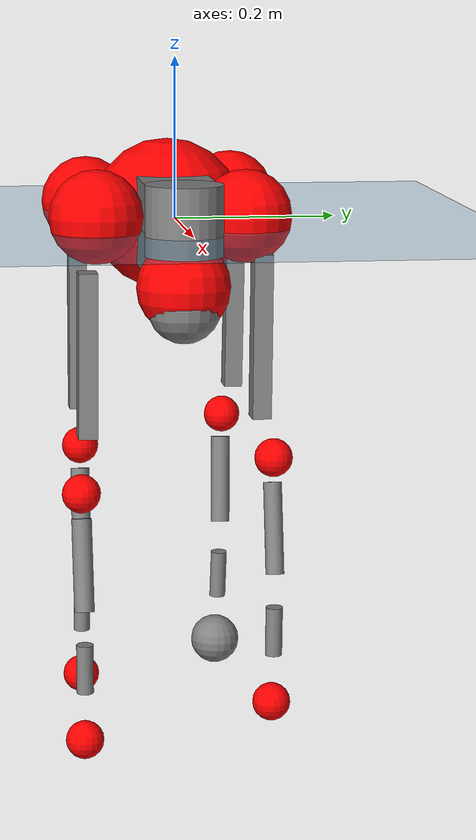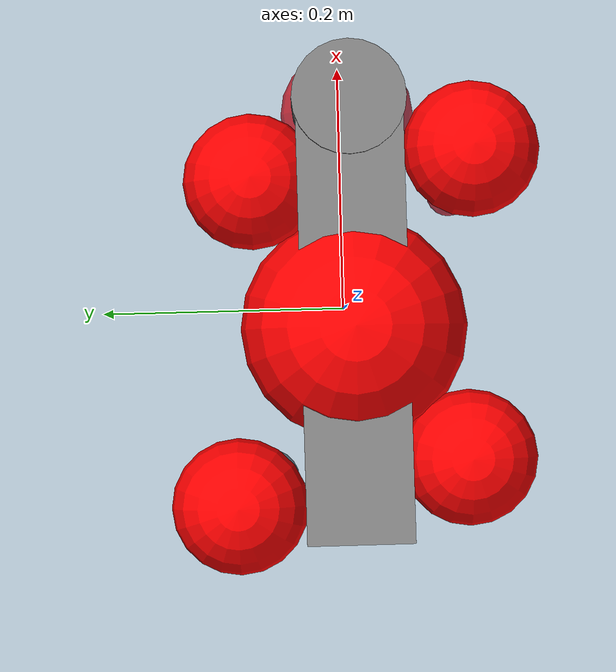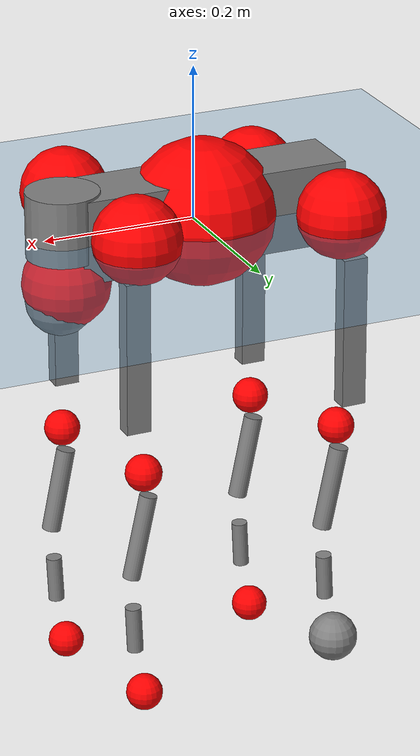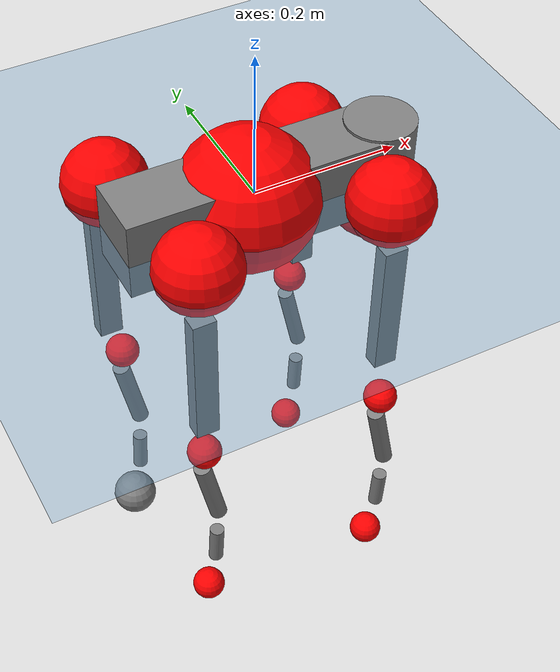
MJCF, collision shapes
<mujoco model="go2">
  <compiler angle="radian" assetdir="assets" balanceinertia="true" inertiafromgeom="false"/>

  <option timestep="0.005" density="1.2" viscosity="2e-05"/>

  <size nkey="1"/>

  <visual>
    <quality shadowsize="8192"/>
    <map shadowclip="0.5"/>
  </visual>

  <default>
    <default class="/">
      <geom contype="0" conaffinity="0" group="1" solref="-1000 -80"/>
      <site size="0.01 0.005 0.005" group="5"/>
      <general forcelimited="true" biastype="affine" gainprm="20" biasprm="0 -20 -0.5"/>
      <default class="go2">
        <joint armature="0.01" damping="0.01" frictionloss="0.2"/>
        <geom condim="1" margin="0.001"/>
        <default class="visual">
          <geom type="mesh" group="2"/>
        </default>
        <default class="collision">
          <geom group="3"/>
          <default class="foot">
            <geom size="0.022 0 0" condim="6" priority="1" friction="0.8 0.02 0.01" solimp="0.015 1 0.022"/>
          </default>
        </default>
        <default class="reward_collision_sphere">
          <geom group="5" rgba="1 0 0 1"/>
        </default>
      </default>
    </default>
  </default>

  <asset>
    <texture type="skybox" colorspace="auto" name="//unnamed_texture_0" builtin="gradient" rgb1="0.95 0.95 0.95" rgb2="0.95 0.95 0.95" width="100" height="600"/>
    <texture type="2d" colorspace="auto" name="texplane" builtin="checker" rgb1="0.345 0.575 0.748" rgb2="0.345 0.575 0.748" markrgb="1 1 1" width="512" height="512"/>
    <material name="MatPlane" class="/" texture="texplane" texuniform="true" texrepeat="2 2" specular="0.9"/>
    <material name="metal" class="/" rgba="0.9 0.95 0.95 1"/>
    <material name="black" class="/" rgba="0 0 0 1"/>
    <material name="white" class="/"/>
    <material name="gray" class="/" rgba="0.671705 0.692426 0.77427 1"/>
    <mesh name="base_0" class="/" file="base_0.obj"/>
    <mesh name="base_1" class="/" file="base_1.obj"/>
    <mesh name="base_2" class="/" file="base_2.obj"/>
    <mesh name="base_3" class="/" file="base_3.obj"/>
    <mesh name="base_4" class="/" file="base_4.obj"/>
    <mesh name="hip_0" class="/" file="hip_0.obj"/>
    <mesh name="hip_1" class="/" file="hip_1.obj"/>
    <mesh name="thigh_0" class="/" file="thigh_0.obj"/>
    <mesh name="thigh_1" class="/" file="thigh_1.obj"/>
    <mesh name="thigh_mirror_0" class="/" file="thigh_mirror_0.obj"/>
    <mesh name="thigh_mirror_1" class="/" file="thigh_mirror_1.obj"/>
    <mesh name="calf_0" class="/" file="calf_0.obj"/>
    <mesh name="calf_1" class="/" file="calf_1.obj"/>
    <mesh name="calf_mirror_0" class="/" file="calf_mirror_0.obj"/>
    <mesh name="calf_mirror_1" class="/" file="calf_mirror_1.obj"/>
    <mesh name="foot" class="/" file="foot.obj"/>
  </asset>

  <worldbody>
    <geom name="floor" class="/" size="100 100 0.125" type="plane" group="0" material="MatPlane"/>
    <light name="toplight_shadow" class="/" pos="0 0 5" dir="0.0990148 0.0990148 -0.990148" type="directional" ambient="0.04 0.04 0.04" diffuse="0.55 0.55 0.55" specular="0.12 0.12 0.12"/>
    <light name="toplight_fill" class="/" pos="0 0 5" dir="0.0990148 0.0990148 -0.990148" type="directional" castshadow="false" ambient="0.04 0.04 0.04" diffuse="0.3 0.3 0.3" specular="0.08 0.08 0.08"/>
    <body name="trunk" childclass="go2" pos="-0.0155554 -0.00880286 0.00383017" quat="0.999994 -0.00169939 0.00228012 0.00178191">
      <inertial pos="0.0144439 0.0038109 -0.00668861" quat="0.0410152 0.732508 0.0150262 0.679356" mass="5.79053" diaginertia="0.00873427 0.0130266 0.156185"/>
      <joint name="//unnamed_joint_0" type="free" armature="0" damping="0" frictionloss="0"/>
      <geom name="//unnamed_geom_1" class="visual" material="black" mesh="base_0"/>
      <geom name="//unnamed_geom_2" class="visual" material="black" mesh="base_1"/>
      <geom name="//unnamed_geom_3" class="visual" material="black" mesh="base_2"/>
      <geom name="//unnamed_geom_4" class="visual" material="white" mesh="base_3"/>
      <geom name="//unnamed_geom_5" class="visual" material="gray" mesh="base_4"/>
      <geom name="trunk_1" class="collision" size="0.178001 0.0442399 0.0539396" type="box"/>
      <geom name="trunk_2" class="collision" size="0.0473154 0.0425839" pos="0.187695 0 0.0146276" type="cylinder"/>
      <geom name="trunk_3" class="collision" size="0.0444765" pos="0.192964 0 -0.0877657"/>
      <geom name="//unnamed_geom_9" class="reward_collision_sphere" size="0.0946309"/>
      <geom name="//unnamed_geom_10" class="reward_collision_sphere" size="0.0567785" pos="0.184402 0 -0.0658243"/>
      <site name="imu" pos="-0.0527559 0.0252207 0.147247" size="0.00946309"/>
      <camera name="track" pos="0 -1.43517 0" quat="0.707107 0.707107 0 0" mode="trackcom"/>
      <camera name="ego_camera" pos="0.205477 0 0.0658243" quat="-0.5 -0.5 0.5 0.5"/>
      <body name="FL_hip" pos="0.123795 0.0322319 0.0111834" quat="0.999973 -0.000108667 0.00161176 0.00714728">
        <inertial pos="0.0129374 0.010408 0.00182508" quat="0.498153 0.504391 0.500047 0.49738" mass="0.643238" diaginertia="0.000122432 0.000136734 0.0035341"/>
        <joint name="FL_hip_joint" pos="0 0 0" axis="0.995752 -0.0692135 0.0607174" stiffness="0.0785155" range="-0.968875 1.02137" armature="0.0169411" damping="0" frictionloss="0.0940003"/>
        <geom name="//unnamed_geom_11" class="visual" material="metal" mesh="hip_0"/>
        <geom name="//unnamed_geom_12" class="visual" material="gray" mesh="hip_1"/>
        <geom name="//unnamed_geom_13" class="collision" size="0.0435302 0.0189262" pos="0 0.0574068 0" quat="0.707107 0.707107 0 0" type="cylinder"/>
        <geom name="//unnamed_geom_14" class="reward_collision_sphere" size="0.0567785" pos="0 0.050231 0"/>
        <body name="FL_thigh" pos="0.0119612 0.0694009 0.0106981" quat="0.999989 -0.00299227 -0.00308767 -0.00183524">
          <inertial pos="0.00122781 -0.0167401 -0.0302418" quat="0.81203 0.0496524 -0.0192532 0.581181" mass="1.03075" diaginertia="0.000784344 0.00121942 0.00670594"/>
          <joint name="FL_thigh_joint" pos="0 0 0" axis="-0.0513295 0.998604 -0.0124855" stiffness="0.0583317" range="-1.75596 3.53178" armature="0.00191878" damping="0.0574038" frictionloss="0.294553"/>
          <geom name="//unnamed_geom_15" class="visual" material="metal" mesh="thigh_0"/>
          <geom name="//unnamed_geom_16" class="visual" material="gray" mesh="thigh_1"/>
          <geom name="//unnamed_geom_17" class="collision" size="0.100782 0.0115923 0.0160872" pos="0 0 -0.155784" quat="0.707107 0 0.707107 0" type="box"/>
          <body name="FL_calf" pos="-0.00275981 0.0179793 -0.308362" quat="0.999979 0.00259506 -0.0037377 0.00455174">
            <inertial pos="-0.00578858 0.00611467 -0.205655" quat="0.677571 -0.0542382 0.0367638 0.732533" mass="0.149965" diaginertia="0.00018476 0.000234106 0.000360746"/>
            <joint name="FL_calf_joint" pos="0 0 0" axis="-0.0255787 0.999177 0.0314714" range="-2.76314 -0.730437" armature="0.00790084" damping="0.0663978" frictionloss="0.148571"/>
            <geom name="//unnamed_geom_18" class="visual" material="gray" mesh="calf_0"/>
            <geom name="//unnamed_geom_19" class="visual" material="black" mesh="calf_1"/>
            <geom name="FL_calf0" class="collision" size="0.0113557 0.0567785" pos="0.00526863 0 -0.0877657" quat="0.994493 0 -0.104807 0" type="cylinder"/>
            <geom name="//unnamed_geom_21" class="collision" size="0.0104094 0.030755" pos="0.0131716 0 -0.216489" quat="0.999688 0 0.0249974 0" type="cylinder"/>
            <geom name="//unnamed_geom_22" class="visual" pos="0 0 -0.311568" quat="1 0 0 0" material="black" mesh="foot"/>
            <geom name="FL_foot" class="foot" size="0.0107793" pos="-0.00131716 0 -0.311568"/>
            <geom name="//unnamed_geom_24" class="reward_collision_sphere" size="0.0236577"/>
            <geom name="//unnamed_geom_25" class="reward_collision_sphere" size="0.0236577" pos="-0.00131716 0 -0.311568"/>
            <site name="FL_foot" class="foot" pos="-0.00131716 0 -0.311568" size="0.00946309"/>
          </body>
        </body>
      </body>
      <body name="FR_hip" pos="0.145077 -0.0506082 0.0143077" quat="0.999999 -0.000760394 0.000220402 0.00149067">
        <inertial pos="-0.0208759 -0.00854612 0.0159331" quat="0.530335 0.459193 0.513059 0.494628" mass="0.424649" diaginertia="9.03699e-05 0.00010323 0.00256876"/>
        <joint name="FR_hip_joint" pos="0 0 0" axis="0.997065 -0.0161746 -0.0748344" range="-0.721066 0.949834" armature="0.0094436" damping="0" frictionloss="0.327448"/>
        <geom name="//unnamed_geom_26" class="visual" pos="0 -6.49166e-09 -2.78441e-07" quat="4.63268e-05 1 0 0" material="metal" mesh="hip_0"/>
        <geom name="//unnamed_geom_27" class="visual" pos="0 -1.05238e-08 6.88691e-07" quat="4.63268e-05 1 0 0" material="gray" mesh="hip_1"/>
        <geom name="//unnamed_geom_28" class="collision" size="0.0435302 0.0189262" pos="0 -0.0574068 0" quat="0.707107 0.707107 0 0" type="cylinder"/>
        <geom name="//unnamed_geom_29" class="reward_collision_sphere" size="0.0567785" pos="0 -0.050231 0"/>
        <body name="FR_thigh" pos="0.00137509 -0.0609839 -0.0112962" quat="1 -0.000860902 0.000163888 -1.8886e-05">
          <inertial pos="0.00791952 -0.00248461 -0.0549673" quat="0.552229 -0.0184054 0.0878899 0.828843" mass="0.872469" diaginertia="0.00071896 0.000932286 0.00529072"/>
          <joint name="FR_thigh_joint" pos="0 0 0" axis="0.0267557 -0.998704 0.0433016" range="-3.39458 1.36593" armature="0.013277" damping="0.0682727" frictionloss="0.133038"/>
          <geom name="//unnamed_geom_30" class="visual" material="metal" mesh="thigh_mirror_0"/>
          <geom name="//unnamed_geom_31" class="visual" material="gray" mesh="thigh_mirror_1"/>
          <geom name="//unnamed_geom_32" class="collision" size="0.100782 0.0115923 0.0160872" pos="0 0 -0.155784" quat="0.707107 0 0.707107 0" type="box"/>
          <body name="FR_calf" pos="0.000947662 -0.00742889 -0.326349" quat="0.999962 0.00662942 -0.00550748 0.00126121">
            <inertial pos="-0.0144614 0.0125451 -0.221445" quat="0.722503 -0.0137457 0.000273937 0.691231" mass="0.257999" diaginertia="0.000171366 0.000241344 0.000296639"/>
            <joint name="FR_calf_joint" pos="0 0 0" axis="-0.0248671 -0.99928 0.0286627" range="1.16968 2.79685" armature="0.00681201" damping="0" frictionloss="0.0442467"/>
            <geom name="//unnamed_geom_33" class="visual" material="gray" mesh="calf_mirror_0"/>
            <geom name="//unnamed_geom_34" class="visual" material="black" mesh="calf_mirror_1"/>
            <geom name="FR_calf0" class="collision" size="0.012302 0.0567785" pos="0.00658579 0 -0.0877657" quat="0.995004 0 -0.0998334 0" type="cylinder"/>
            <geom name="//unnamed_geom_36" class="collision" size="0.0104094 0.030755" pos="0.0131716 0 -0.216489" quat="0.999688 0 0.0249974 0" type="cylinder"/>
            <geom name="//unnamed_geom_37" class="visual" pos="0 0 -0.311568" quat="1 0 0 0" material="black" mesh="foot"/>
            <geom name="FR_foot" class="foot" size="0.0213864" pos="-0.00131716 0 -0.311568"/>
            <geom name="//unnamed_geom_39" class="reward_collision_sphere" size="0.0236577"/>
            <geom name="//unnamed_geom_40" class="reward_collision_sphere" size="0.0236577" pos="-0.00131716 0 -0.311568"/>
            <site name="FR_foot" class="foot" pos="-0.00131716 0 -0.311568" size="0.00946309"/>
          </body>
        </body>
      </body>
      <body name="RL_hip" pos="-0.146242 0.0486413 0.00783617" quat="0.999993 -0.00338368 0.00112809 0.0010213">
        <inertial pos="-0.0131455 0.0196675 -0.0013188" quat="0.498084 0.450487 0.488751 0.556863" mass="0.658578" diaginertia="0.000121435 0.000114441 0.00388433"/>
        <joint name="RL_hip_joint" pos="0 0 0" axis="-0.998871 -0.0406527 -0.0245638" range="-1.3002 0.872841" armature="0.00962748" damping="0.0109649" frictionloss="0.266818"/>
        <geom name="//unnamed_geom_41" class="visual" pos="7.0057e-09 0 1.37328e-06" quat="4.63268e-05 0 1 0" material="metal" mesh="hip_0"/>
        <geom name="//unnamed_geom_42" class="visual" pos="1.13571e-08 0 1.2179e-06" quat="4.63268e-05 0 1 0" material="gray" mesh="hip_1"/>
        <geom name="//unnamed_geom_43" class="collision" size="0.0435302 0.0189262" pos="0 0.0574068 0" quat="0.707107 0.707107 0 0" type="cylinder"/>
        <geom name="//unnamed_geom_44" class="reward_collision_sphere" size="0.0567785" pos="0 0.050231 0"/>
        <body name="RL_thigh" pos="-0.0107991 0.0598422 -0.000376234" quat="0.999991 -0.00309751 0.00173808 0.00236802">
          <inertial pos="-0.00872737 -0.0330416 -0.0512485" quat="0.808326 0.129645 0.0213656 0.573885" mass="0.753497" diaginertia="0.000713107 0.000889033 0.00603468"/>
          <joint name="RL_thigh_joint" pos="0 0 0" axis="0.0734362 0.996818 -0.0309937" stiffness="0.0650961" range="-0.776279 4.30121" armature="0.0022134" damping="0" frictionloss="0.0502117"/>
          <geom name="//unnamed_geom_45" class="visual" material="metal" mesh="thigh_0"/>
          <geom name="//unnamed_geom_46" class="visual" material="gray" mesh="thigh_1"/>
          <geom name="//unnamed_geom_47" class="collision" size="0.100782 0.0115923 0.0160872" pos="0 0 -0.155784" quat="0.707107 0 0.707107 0" type="box"/>
          <body name="RL_calf" pos="0.0117315 -0.014295 -0.293857" quat="0.99996 -0.0050402 0.000656534 -0.0073718">
            <inertial pos="-0.000212064 0.0014928 -0.225588" quat="0.698496 -0.0210286 -0.0506619 0.713508" mass="0.240154" diaginertia="0.000186758 0.0003054 0.000336518"/>
            <joint name="RL_calf_joint" pos="0 0 0" axis="-0.0411043 0.99903 -0.0157726" stiffness="0.0487624" range="-2.85726 -0.599304" armature="0.0065177" damping="0.00017519" frictionloss="0.319927"/>
            <geom name="//unnamed_geom_48" class="visual" material="gray" mesh="calf_0"/>
            <geom name="//unnamed_geom_49" class="visual" material="black" mesh="calf_1"/>
            <geom name="RL_calf0" class="collision" size="0.012302 0.0567785" pos="0.00658579 0 -0.0877657" quat="0.995004 0 -0.0998334 0" type="cylinder"/>
            <geom name="//unnamed_geom_51" class="collision" size="0.0104094 0.030755" pos="0.0131716 0 -0.216489" quat="0.999688 0 0.0249974 0" type="cylinder"/>
            <geom name="//unnamed_geom_52" class="visual" pos="0 0 -0.311568" quat="1 0 0 0" material="black" mesh="foot"/>
            <geom name="RL_foot" class="foot" size="0.0319728" pos="-0.00131716 0 -0.311568"/>
            <geom name="//unnamed_geom_54" class="reward_collision_sphere" size="0.0236577"/>
            <geom name="//unnamed_geom_55" class="reward_collision_sphere" size="0.0236577" pos="-0.00131716 0 -0.311568"/>
            <site name="RL_foot" class="foot" pos="-0.00131716 0 -0.311568" size="0.00946309"/>
          </body>
        </body>
      </body>
      <body name="RR_hip" pos="-0.110613 -0.0425813 0.00463128" quat="0.999991 -0.00178375 -0.00238029 -0.00288696">
        <inertial pos="-0.00952516 -0.0119967 -0.00153342" quat="0.509993 0.54174 0.427862 0.513186" mass="0.614744" diaginertia="0.000101054 0.000103149 0.00293992"/>
        <joint name="RR_hip_joint" pos="0 0 0" axis="-0.996256 -0.0855715 -0.0122886" stiffness="0.0274398" range="-1.06155 0.888936" armature="0.0140301" damping="0" frictionloss="0.16538"/>
        <geom name="//unnamed_geom_56" class="visual" pos="-7.00366e-09 -6.49166e-09 1.65172e-06" quat="2.14617e-09 4.63268e-05 4.63268e-05 -1" material="metal" mesh="hip_0"/>
        <geom name="//unnamed_geom_57" class="visual" pos="-1.13621e-08 -1.05238e-08 5.29212e-07" quat="2.14617e-09 4.63268e-05 4.63268e-05 -1" material="gray" mesh="hip_1"/>
        <geom name="//unnamed_geom_58" class="collision" size="0.0435302 0.0189262" pos="0 -0.0574068 0" quat="0.707107 0.707107 0 0" type="cylinder"/>
        <geom name="//unnamed_geom_59" class="reward_collision_sphere" size="0.0567785" pos="0 -0.050231 0"/>
        <body name="RR_thigh" pos="-0.00459611 -0.0616365 -0.0155234" quat="0.999991 0.00250371 -3.29052e-05 0.00350899">
          <inertial pos="-0.00937096 0.0195353 -0.055415" quat="0.511616 -0.0479017 0.0141865 0.857761" mass="1.03096" diaginertia="0.00074616 0.000886318 0.00442726"/>
          <joint name="RR_thigh_joint" pos="0 0 0" axis="-0.0348121 -0.99939 0.00263679" stiffness="0.0644382" range="-4.58264 0.357518" armature="0.00326648" damping="0.078298" frictionloss="0.285836"/>
          <geom name="//unnamed_geom_60" class="visual" material="metal" mesh="thigh_mirror_0"/>
          <geom name="//unnamed_geom_61" class="visual" material="gray" mesh="thigh_mirror_1"/>
          <geom name="//unnamed_geom_62" class="collision" size="0.100782 0.0115923 0.0160872" pos="0 0 -0.155784" quat="0.707107 0 0.707107 0" type="box"/>
          <body name="RR_calf" pos="-0.000201372 0.00253964 -0.307509" quat="0.999999 -0.000438291 -0.000567629 0.000765826">
            <inertial pos="0.0195317 0.0179212 -0.223482" quat="0.708647 -0.0139278 0.0148401 0.70527" mass="0.175944" diaginertia="0.000224563 0.000238409 0.000370536"/>
            <joint name="RR_calf_joint" pos="0 0 0" axis="0.0336554 -0.999266 -0.0182775" stiffness="0.0268228" range="1.00471 2.38972" armature="0.00924153" damping="0" frictionloss="0.0293652"/>
            <geom name="//unnamed_geom_63" class="visual" material="gray" mesh="calf_mirror_0"/>
            <geom name="//unnamed_geom_64" class="visual" material="black" mesh="calf_mirror_1"/>
            <geom name="RR_calf0" class="collision" size="0.012302 0.0567785" pos="0.00658579 0 -0.0877657" quat="0.995004 0 -0.0998334 0" type="cylinder"/>
            <geom name="//unnamed_geom_66" class="collision" size="0.0104094 0.030755" pos="0.0131716 0 -0.216489" quat="0.999688 0 0.0249974 0" type="cylinder"/>
            <geom name="//unnamed_geom_67" class="visual" pos="0 0 -0.311568" quat="1 0 0 0" material="black" mesh="foot"/>
            <geom name="RR_foot" class="foot" size="0.00803722" pos="-0.00131716 0 -0.311568"/>
            <geom name="//unnamed_geom_69" class="reward_collision_sphere" size="0.0236577"/>
            <geom name="//unnamed_geom_70" class="reward_collision_sphere" size="0.0236577" pos="-0.00131716 0 -0.311568"/>
            <site name="RR_foot" class="foot" pos="-0.00131716 0 -0.311568" size="0.00946309"/>
          </body>
        </body>
      </body>
    </body>
  </worldbody>

  <contact>
    <pair class="/" geom1="floor" geom2="FL_foot" name="//unnamed_contact_0"/>
    <pair class="/" geom1="floor" geom2="FR_foot" name="//unnamed_contact_1"/>
    <pair class="/" geom1="floor" geom2="RL_foot" name="//unnamed_contact_2"/>
    <pair class="/" geom1="floor" geom2="RR_foot" name="//unnamed_contact_3"/>
  </contact>

  <actuator>
    <general name="FL_hip" class="/" joint="FL_hip_joint" forcerange="-22.8454 22.8454" gainprm="18.5326" biasprm="0 -18.5326 -0.381837"/>
    <general name="FL_thigh" class="/" joint="FL_thigh_joint" forcerange="-34.7582 34.7582" gainprm="18.5326" biasprm="0 -18.5326 -0.381837"/>
    <general name="FL_calf" class="/" joint="FL_calf_joint" forcerange="-28.0563 28.0563" gainprm="18.5326" biasprm="0 -18.5326 -0.381837"/>
    <general name="FR_hip" class="/" joint="FR_hip_joint" forcerange="-22.2029 22.2029" gainprm="18.5326" biasprm="0 -18.5326 -0.381837"/>
    <general name="FR_thigh" class="/" joint="FR_thigh_joint" forcerange="-18.3922 18.3922" gainprm="18.5326" biasprm="0 -18.5326 -0.381837"/>
    <general name="FR_calf" class="/" joint="FR_calf_joint" forcerange="-24.6368 24.6368" gainprm="18.5326" biasprm="0 -18.5326 -0.381837"/>
    <general name="RL_hip" class="/" joint="RL_hip_joint" forcerange="-22.3821 22.3821" gainprm="18.5326" biasprm="0 -18.5326 -0.381837"/>
    <general name="RL_thigh" class="/" joint="RL_thigh_joint" forcerange="-12.5582 12.5582" gainprm="18.5326" biasprm="0 -18.5326 -0.381837"/>
    <general name="RL_calf" class="/" joint="RL_calf_joint" forcerange="-60.6605 60.6605" gainprm="18.5326" biasprm="0 -18.5326 -0.381837"/>
    <general name="RR_hip" class="/" joint="RR_hip_joint" forcerange="-25.4492 25.4492" gainprm="18.5326" biasprm="0 -18.5326 -0.381837"/>
    <general name="RR_thigh" class="/" joint="RR_thigh_joint" forcerange="-15.9728 15.9728" gainprm="18.5326" biasprm="0 -18.5326 -0.381837"/>
    <general name="RR_calf" class="/" joint="RR_calf_joint" forcerange="-71.8874 71.8874" gainprm="18.5326" biasprm="0 -18.5326 -0.381837"/>
  </actuator>

  <sensor>
    <gyro site="imu" name="imu_angular_velocity"/>
    <velocimeter site="imu" name="imu_linear_velocity"/>
    <framelinvel objtype="site" objname="FL_foot" name="FL_foot_global_linear_velocity"/>
    <framelinvel objtype="site" objname="FR_foot" name="FR_foot_global_linear_velocity"/>
    <framelinvel objtype="site" objname="RL_foot" name="RL_foot_global_linear_velocity"/>
    <framelinvel objtype="site" objname="RR_foot" name="RR_foot_global_linear_velocity"/>
  </sensor>

  <keyframe>
    <key name="home" qpos="0 0 0.325 1 0 0 0 0.1 0.8 -1.5 -0.1 -0.8 1.5 -0.1 0.8 -1.5 0.1 -0.8 1.5"/>
  </keyframe>
</mujoco>
